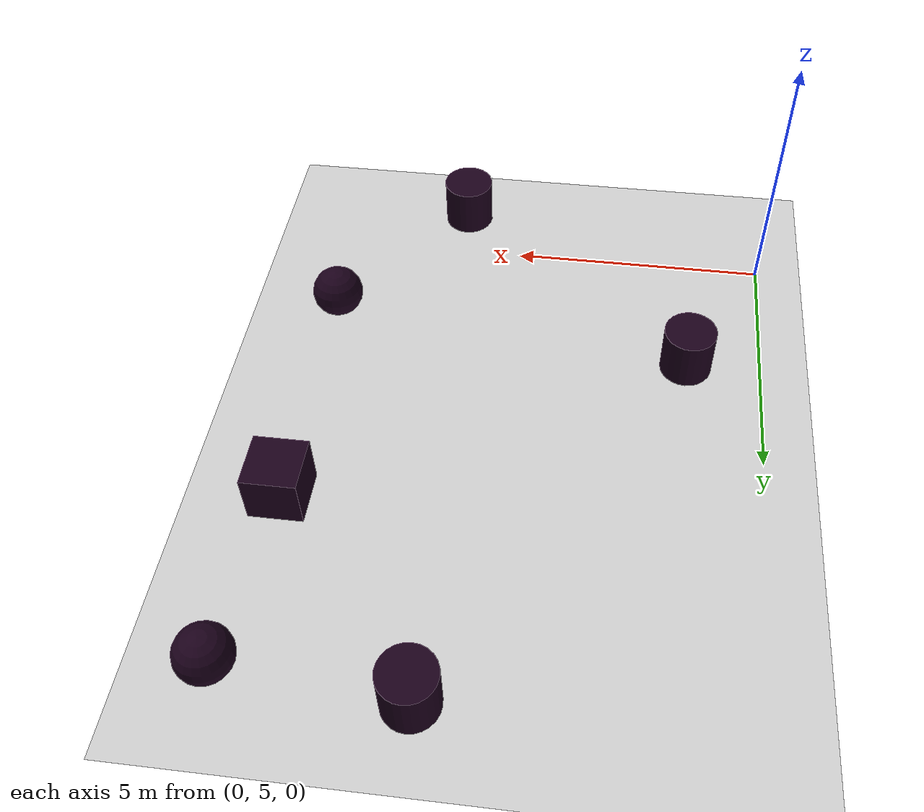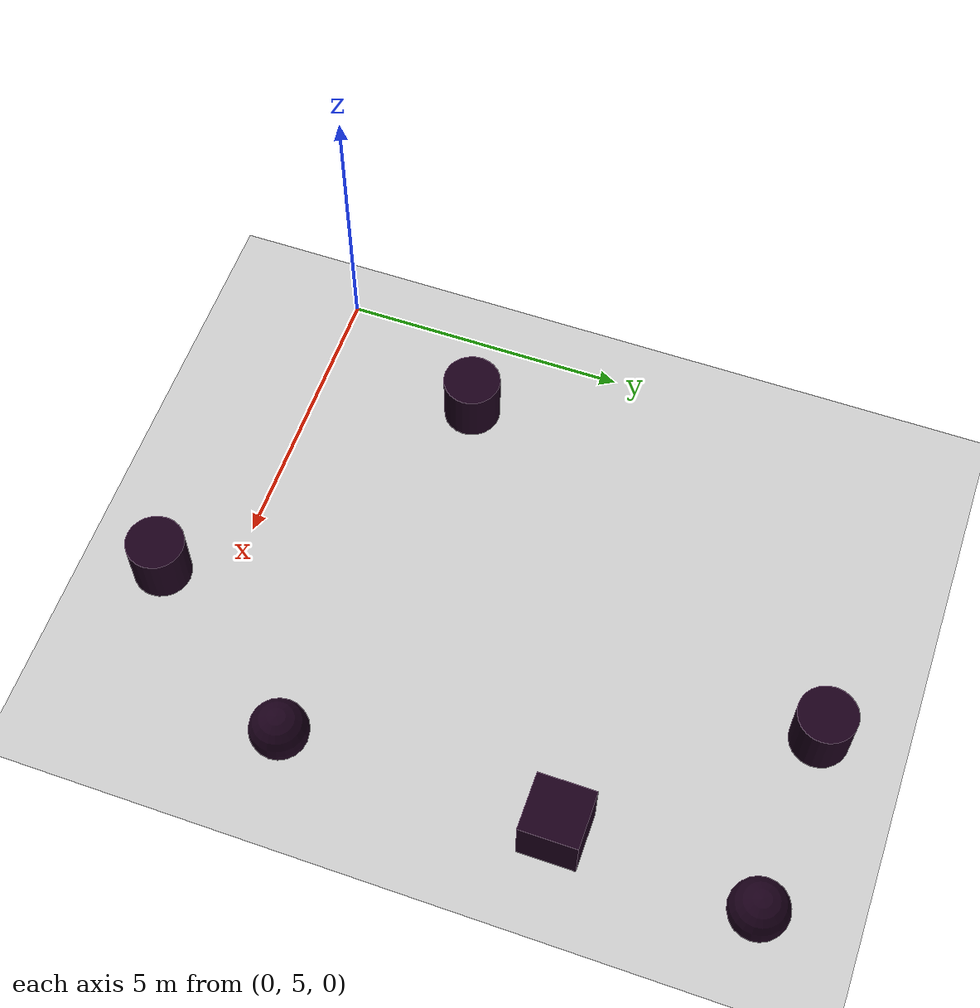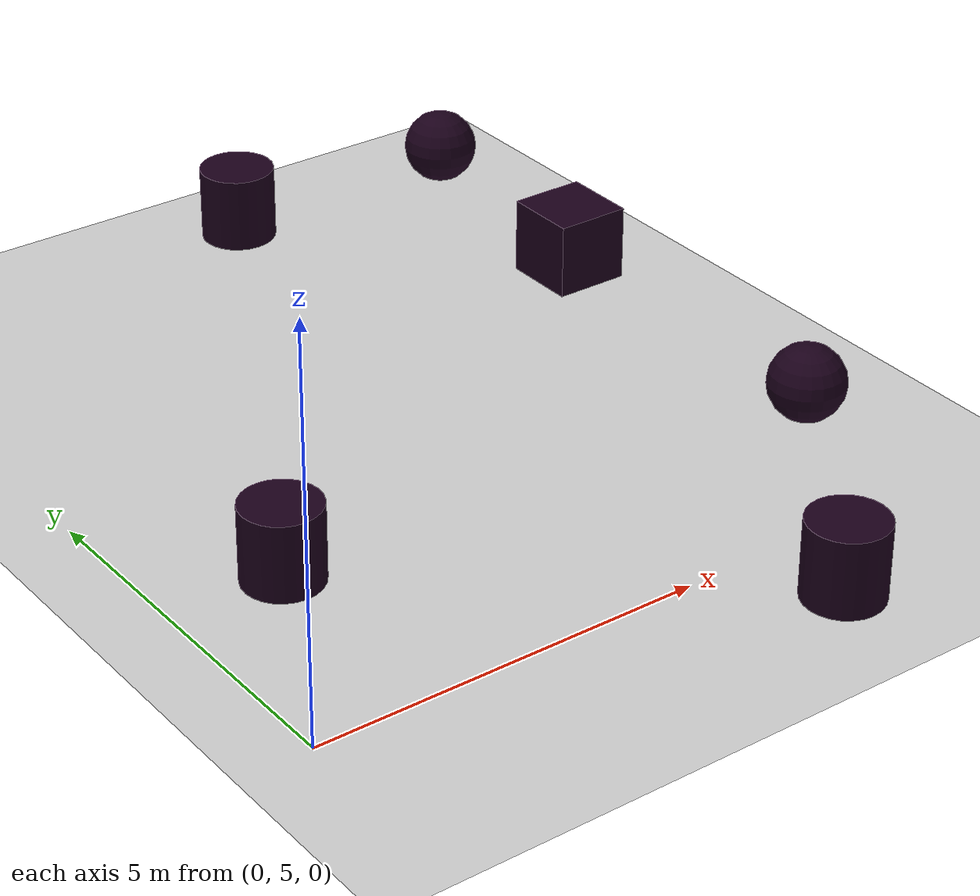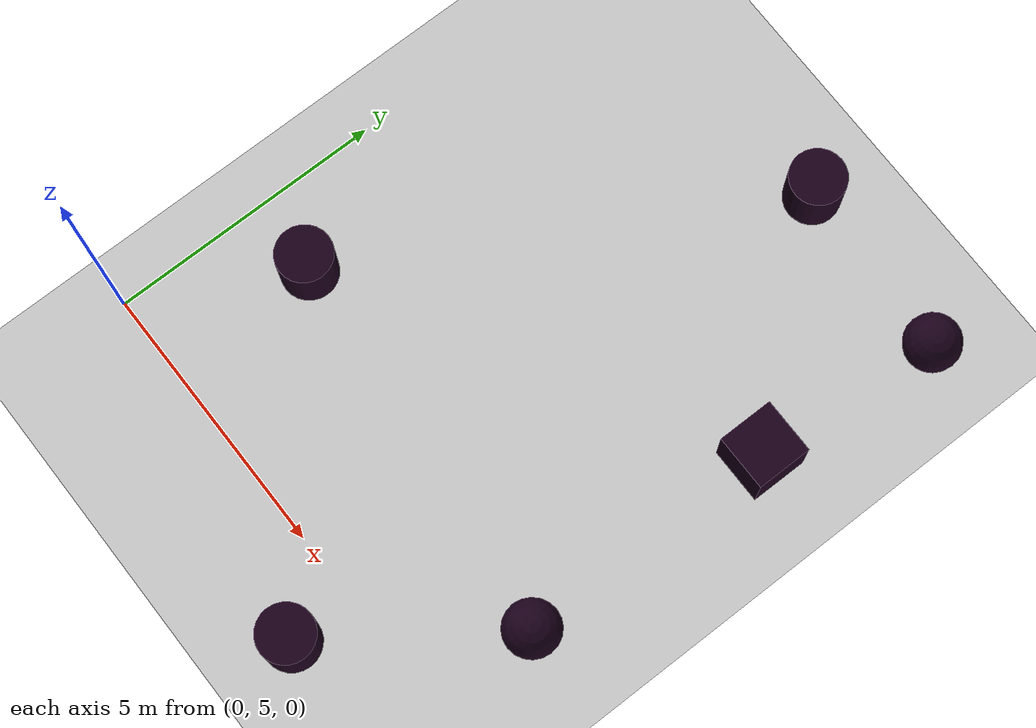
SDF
<sdf version="1.6">
 <world name="default">
  <model name="ground_plane">
   <static>1</static>
   <link name="link">
    <collision name="collision">
     <geometry><plane><normal>0 0 1</normal><size>100 100</size></plane></geometry>
     <surface><friction><ode><mu>100</mu><mu2>50</mu2></ode></friction></surface>
    </collision>
    <visual name="visual">
     <cast_shadows>0</cast_shadows>
     <geometry><plane><normal>0 0 1</normal><size>100 100</size></plane></geometry>
     <material>
      <script><uri>file://media/materials/scripts/gazebo.material</uri><name>Gazebo/Grey</name></script>
     </material>
    </visual>
   </link>
  </model>
  <model name="unit_box_5">
   <link name="link">
    <inertial>
     <mass>1</mass>
     <inertia>
      <ixx>0.166667</ixx>
      <ixy>0</ixy>
      <ixz>0</ixz>
      <iyy>0.166667</iyy>
      <iyz>0</iyz>
      <izz>0.166667</izz>
     </inertia>
    </inertial>
    <visual name="visual">
     <geometry><box><size>1 1 1</size></box></geometry>
     <material>
      <script><name>Gazebo/Grey</name><uri>file://media/materials/scripts/gazebo.material</uri></script>
      <shader type="pixel"><normal_map>__default__</normal_map></shader>
      <ambient>0.1 0 0.1 1</ambient>
      <diffuse>0.1 0 0.1 1</diffuse>
      <specular>0.1 0 0.1 1</specular>
      <emissive>0.1 0 0.1 1</emissive>
     </material>
    </visual>
    <collision name="collision">
     <geometry><box><size>1 1 1</size></box></geometry>
     <surface>
      <friction>
       <ode><mu>1</mu><mu2>1</mu2><fdir1>0 0 0</fdir1><slip1>0</slip1><slip2>0</slip2></ode>
       <torsional>
        <coefficient>1</coefficient>
        <patch_radius>0</patch_radius>
        <surface_radius>0</surface_radius>
        <use_patch_radius>1</use_patch_radius>
        <ode><slip>0</slip></ode>
       </torsional>
      </friction>
      <bounce><restitution_coefficient>0</restitution_coefficient><threshold>1e+06</threshold></bounce>
      <contact>
       <collide_without_contact>0</collide_without_contact>
       <collide_without_contact_bitmask>1</collide_without_contact_bitmask>
       <collide_bitmask>1</collide_bitmask>
       <ode>
        <soft_cfm>0</soft_cfm>
        <soft_erp>0.2</soft_erp>
        <kp>1e+13</kp>
        <kd>1</kd>
        <max_vel>0.01</max_vel>
        <min_depth>0</min_depth>
       </ode>
       <bullet>
        <split_impulse>1</split_impulse>
        <split_impulse_penetration_threshold>-0.01</split_impulse_penetration_threshold>
        <soft_cfm>0</soft_cfm>
        <soft_erp>0.2</soft_erp>
        <kp>1e+13</kp>
        <kd>1</kd>
       </bullet>
      </contact>
     </surface>
    </collision>
   </link>
   <static>0</static>
   <pose>8.5104 11.675 0.5 0 -0 0</pose>
  </model>
  <model name="unit_sphere_1_6">
   <link name="link">
    <inertial>
     <mass>1</mass>
     <inertia><ixx>0.1</ixx><ixy>0</ixy><ixz>0</ixz><iyy>0.1</iyy><iyz>0</iyz><izz>0.1</izz></inertia>
    </inertial>
    <visual name="visual">
     <geometry><sphere><radius>0.5</radius></sphere></geometry>
     <material>
      <script><name>Gazebo/Grey</name><uri>file://media/materials/scripts/gazebo.material</uri></script>
      <shader type="pixel"><normal_map>__default__</normal_map></shader>
      <ambient>0.1 0 0.1 1</ambient>
      <diffuse>0.1 0 0.1 1</diffuse>
      <specular>0.1 0 0.1 1</specular>
      <emissive>0.1 0 0.1 1</emissive>
     </material>
    </visual>
    <collision name="collision">
     <geometry><sphere><radius>0.5</radius></sphere></geometry>
     <surface>
      <friction>
       <ode><mu>1</mu><mu2>1</mu2><fdir1>0 0 0</fdir1><slip1>0</slip1><slip2>0</slip2></ode>
       <torsional>
        <coefficient>1</coefficient>
        <patch_radius>0</patch_radius>
        <surface_radius>0</surface_radius>
        <use_patch_radius>1</use_patch_radius>
        <ode><slip>0</slip></ode>
       </torsional>
      </friction>
      <bounce><restitution_coefficient>0</restitution_coefficient><threshold>1e+06</threshold></bounce>
      <contact>
       <collide_without_contact>0</collide_without_contact>
       <collide_without_contact_bitmask>1</collide_without_contact_bitmask>
       <collide_bitmask>1</collide_bitmask>
       <ode>
        <soft_cfm>0</soft_cfm>
        <soft_erp>0.2</soft_erp>
        <kp>1e+13</kp>
        <kd>1</kd>
        <max_vel>0.01</max_vel>
        <min_depth>0</min_depth>
       </ode>
       <bullet>
        <split_impulse>1</split_impulse>
        <split_impulse_penetration_threshold>-0.01</split_impulse_penetration_threshold>
        <soft_cfm>0</soft_cfm>
        <soft_erp>0.2</soft_erp>
        <kp>1e+13</kp>
        <kd>1</kd>
       </bullet>
      </contact>
     </surface>
    </collision>
   </link>
   <static>0</static>
   <pose>8.81686 15.0222 0.5 0 -0 0</pose>
  </model>
  <model name="unit_sphere_1_7">
   <link name="link">
    <inertial>
     <mass>1</mass>
     <inertia><ixx>0.1</ixx><ixy>0</ixy><ixz>0</ixz><iyy>0.1</iyy><iyz>0</iyz><izz>0.1</izz></inertia>
    </inertial>
    <visual name="visual">
     <geometry><sphere><radius>0.5</radius></sphere></geometry>
     <material>
      <script><name>Gazebo/Grey</name><uri>file://media/materials/scripts/gazebo.material</uri></script>
      <shader type="pixel"><normal_map>__default__</normal_map></shader>
      <ambient>0.1 0 0.1 1</ambient>
      <diffuse>0.1 0 0.1 1</diffuse>
      <specular>0.1 0 0.1 1</specular>
      <emissive>0.1 0 0.1 1</emissive>
     </material>
    </visual>
    <collision name="collision">
     <geometry><sphere><radius>0.5</radius></sphere></geometry>
     <surface>
      <friction>
       <ode><mu>1</mu><mu2>1</mu2><fdir1>0 0 0</fdir1><slip1>0</slip1><slip2>0</slip2></ode>
       <torsional>
        <coefficient>1</coefficient>
        <patch_radius>0</patch_radius>
        <surface_radius>0</surface_radius>
        <use_patch_radius>1</use_patch_radius>
        <ode><slip>0</slip></ode>
       </torsional>
      </friction>
      <bounce><restitution_coefficient>0</restitution_coefficient><threshold>1e+06</threshold></bounce>
      <contact>
       <collide_without_contact>0</collide_without_contact>
       <collide_without_contact_bitmask>1</collide_without_contact_bitmask>
       <collide_bitmask>1</collide_bitmask>
       <ode>
        <soft_cfm>0</soft_cfm>
        <soft_erp>0.2</soft_erp>
        <kp>1e+13</kp>
        <kd>1</kd>
        <max_vel>0.01</max_vel>
        <min_depth>0</min_depth>
       </ode>
       <bullet>
        <split_impulse>1</split_impulse>
        <split_impulse_penetration_threshold>-0.01</split_impulse_penetration_threshold>
        <soft_cfm>0</soft_cfm>
        <soft_erp>0.2</soft_erp>
        <kp>1e+13</kp>
        <kd>1</kd>
       </bullet>
      </contact>
     </surface>
    </collision>
   </link>
   <static>0</static>
   <pose>8.49477 6.98765 0.5 0 -0 0</pose>
  </model>
  <model name="unit_cylinder_0_1">
   <link name="link">
    <inertial>
     <mass>1</mass>
     <inertia><ixx>0.145833</ixx><ixy>0</ixy><ixz>0</ixz><iyy>0.145833</iyy><iyz>0</iyz><izz>0.125</izz></inertia>
    </inertial>
    <visual name="visual">
     <geometry><cylinder><radius>0.5</radius><length>1</length></cylinder></geometry>
     <material>
      <script><name>Gazebo/Grey</name><uri>file://media/materials/scripts/gazebo.material</uri></script>
      <shader type="pixel"><normal_map>__default__</normal_map></shader>
      <ambient>0.1 0 0.1 1</ambient>
      <diffuse>0.1 0 0.1 1</diffuse>
      <specular>0.1 0 0.1 1</specular>
      <emissive>0 0 0 1</emissive>
     </material>
    </visual>
    <collision name="collision">
     <geometry><cylinder><radius>0.5</radius><length>1</length></cylinder></geometry>
     <surface>
      <friction>
       <ode><mu>1</mu><mu2>1</mu2><fdir1>0 0 0</fdir1><slip1>0</slip1><slip2>0</slip2></ode>
       <torsional>
        <coefficient>1</coefficient>
        <patch_radius>0</patch_radius>
        <surface_radius>0</surface_radius>
        <use_patch_radius>1</use_patch_radius>
        <ode><slip>0</slip></ode>
       </torsional>
      </friction>
      <bounce><restitution_coefficient>0</restitution_coefficient><threshold>1e+06</threshold></bounce>
      <contact>
       <collide_without_contact>0</collide_without_contact>
       <collide_without_contact_bitmask>1</collide_without_contact_bitmask>
       <collide_bitmask>1</collide_bitmask>
       <ode>
        <soft_cfm>0</soft_cfm>
        <soft_erp>0.2</soft_erp>
        <kp>1e+13</kp>
        <kd>1</kd>
        <max_vel>0.01</max_vel>
        <min_depth>0</min_depth>
       </ode>
       <bullet>
        <split_impulse>1</split_impulse>
        <split_impulse_penetration_threshold>-0.01</split_impulse_penetration_threshold>
        <soft_cfm>0</soft_cfm>
        <soft_erp>0.2</soft_erp>
        <kp>1e+13</kp>
        <kd>1</kd>
       </bullet>
      </contact>
     </surface>
    </collision>
   </link>
   <static>0</static>
   <pose>1.44203 7.77005 0.499991 0 -0 0</pose>
  </model>
  <model name="unit_cylinder_0_2">
   <link name="link">
    <inertial>
     <mass>1</mass>
     <inertia><ixx>0.145833</ixx><ixy>0</ixy><ixz>0</ixz><iyy>0.145833</iyy><iyz>0</iyz><izz>0.125</izz></inertia>
    </inertial>
    <visual name="visual">
     <geometry><cylinder><radius>0.5</radius><length>1</length></cylinder></geometry>
     <material>
      <script><name>Gazebo/Grey</name><uri>file://media/materials/scripts/gazebo.material</uri></script>
      <shader type="pixel"><normal_map>__default__</normal_map></shader>
      <ambient>0.1 0 0.1 1</ambient>
      <diffuse>0.1 0 0.1 1</diffuse>
      <specular>0.1 0 0.1 1</specular>
      <emissive>0 0 0 1</emissive>
     </material>
    </visual>
    <collision name="collision">
     <geometry><cylinder><radius>0.5</radius><length>1</length></cylinder></geometry>
     <surface>
      <friction>
       <ode><mu>1</mu><mu2>1</mu2><fdir1>0 0 0</fdir1><slip1>0</slip1><slip2>0</slip2></ode>
       <torsional>
        <coefficient>1</coefficient>
        <patch_radius>0</patch_radius>
        <surface_radius>0</surface_radius>
        <use_patch_radius>1</use_patch_radius>
        <ode><slip>0</slip></ode>
       </torsional>
      </friction>
      <bounce><restitution_coefficient>0</restitution_coefficient><threshold>1e+06</threshold></bounce>
      <contact>
       <collide_without_contact>0</collide_without_contact>
       <collide_without_contact_bitmask>1</collide_without_contact_bitmask>
       <collide_bitmask>1</collide_bitmask>
       <ode>
        <soft_cfm>0</soft_cfm>
        <soft_erp>0.2</soft_erp>
        <kp>1e+13</kp>
        <kd>1</kd>
        <max_vel>0.01</max_vel>
        <min_depth>0</min_depth>
       </ode>
       <bullet>
        <split_impulse>1</split_impulse>
        <split_impulse_penetration_threshold>-0.01</split_impulse_penetration_threshold>
        <soft_cfm>0</soft_cfm>
        <soft_erp>0.2</soft_erp>
        <kp>1e+13</kp>
        <kd>1</kd>
       </bullet>
      </contact>
     </surface>
    </collision>
   </link>
   <static>0</static>
   <pose>5.57012 15.2162 0.5 0 -0 0</pose>
  </model>
  <model name="unit_cylinder_0_3">
   <link name="link">
    <inertial>
     <mass>1</mass>
     <inertia><ixx>0.145833</ixx><ixy>0</ixy><ixz>0</ixz><iyy>0.145833</iyy><iyz>0</iyz><izz>0.125</izz></inertia>
    </inertial>
    <visual name="visual">
     <geometry><cylinder><radius>0.5</radius><length>1</length></cylinder></geometry>
     <material>
      <script><name>Gazebo/Grey</name><uri>file://media/materials/scripts/gazebo.material</uri></script>
      <shader type="pixel"><normal_map>__default__</normal_map></shader>
      <ambient>0.1 0 0.1 1</ambient>
      <diffuse>0.1 0 0.1 1</diffuse>
      <specular>0.1 0 0.1 1</specular>
      <emissive>0 0 0 1</emissive>
     </material>
    </visual>
    <collision name="collision">
     <geometry><cylinder><radius>0.5</radius><length>1</length></cylinder></geometry>
     <surface>
      <friction>
       <ode><mu>1</mu><mu2>1</mu2><fdir1>0 0 0</fdir1><slip1>0</slip1><slip2>0</slip2></ode>
       <torsional>
        <coefficient>1</coefficient>
        <patch_radius>0</patch_radius>
        <surface_radius>0</surface_radius>
        <use_patch_radius>1</use_patch_radius>
        <ode><slip>0</slip></ode>
       </torsional>
      </friction>
      <bounce><restitution_coefficient>0</restitution_coefficient><threshold>1e+06</threshold></bounce>
      <contact>
       <collide_without_contact>0</collide_without_contact>
       <collide_without_contact_bitmask>1</collide_without_contact_bitmask>
       <collide_bitmask>1</collide_bitmask>
       <ode>
        <soft_cfm>0</soft_cfm>
        <soft_erp>0.2</soft_erp>
        <kp>1e+13</kp>
        <kd>1</kd>
        <max_vel>0.01</max_vel>
        <min_depth>0</min_depth>
       </ode>
       <bullet>
        <split_impulse>1</split_impulse>
        <split_impulse_penetration_threshold>-0.01</split_impulse_penetration_threshold>
        <soft_cfm>0</soft_cfm>
        <soft_erp>0.2</soft_erp>
        <kp>1e+13</kp>
        <kd>1</kd>
       </bullet>
      </contact>
     </surface>
    </collision>
   </link>
   <static>0</static>
   <pose>6.25219 3.87062 0.499991 0 -0 0</pose>
  </model>
 </world>
</sdf>
